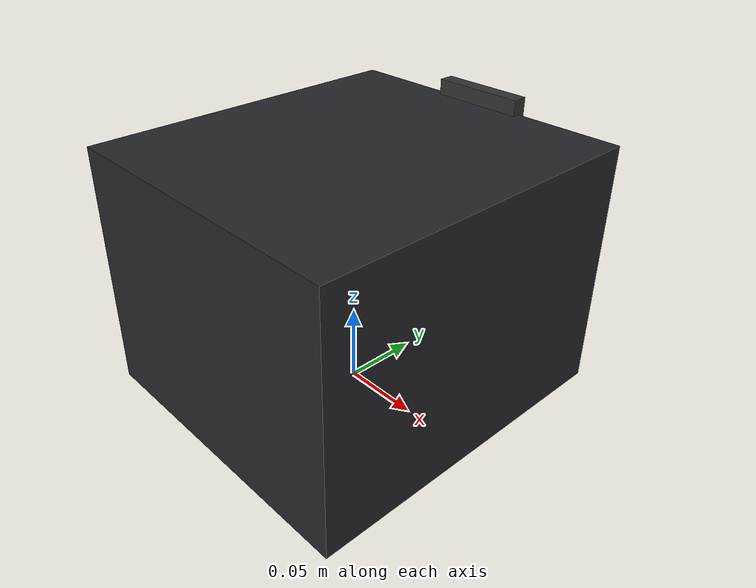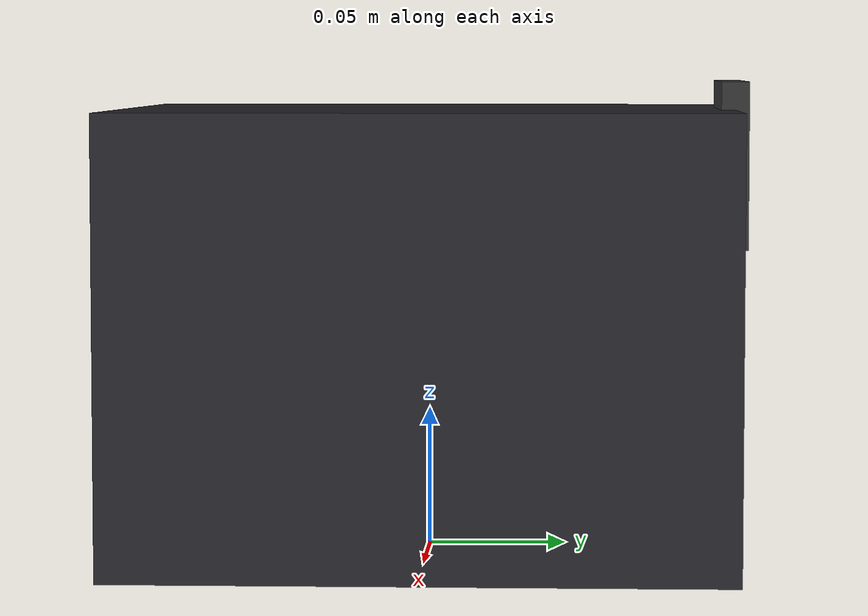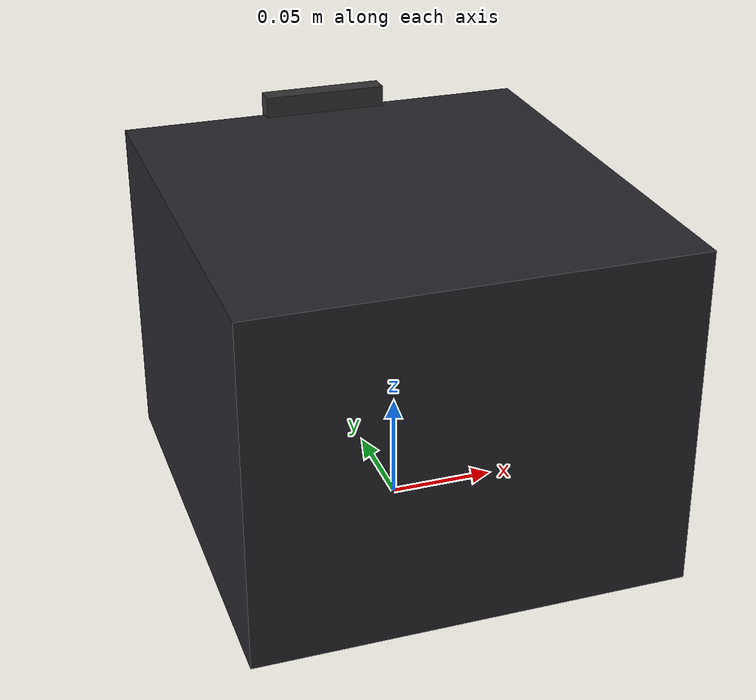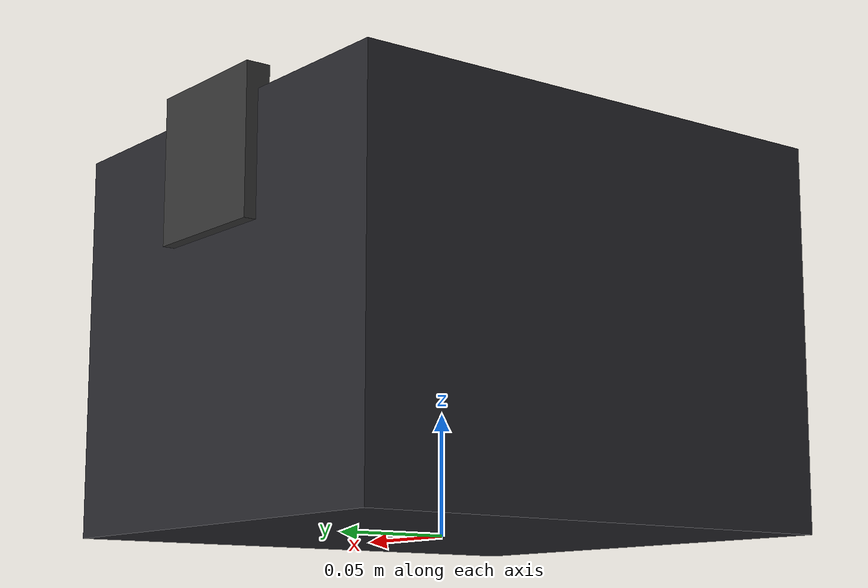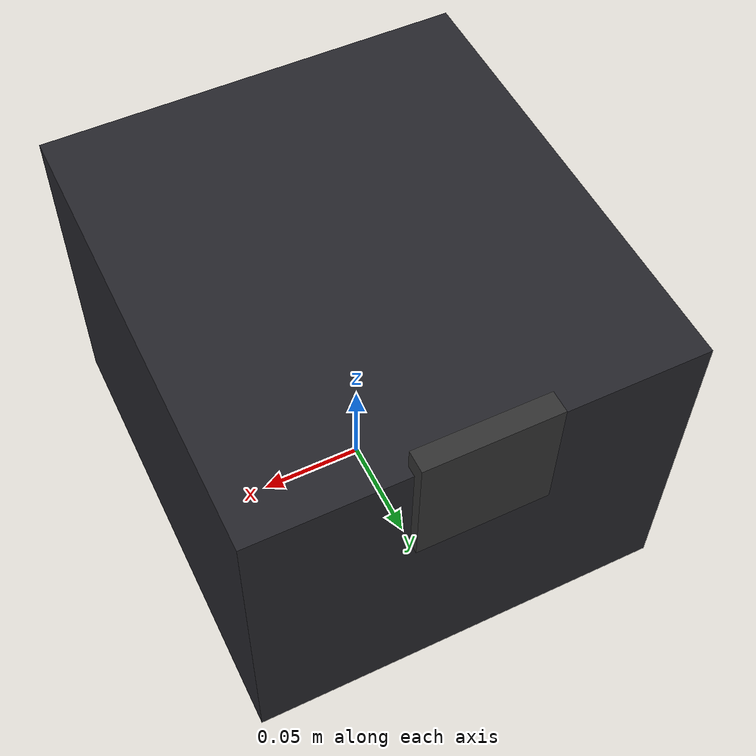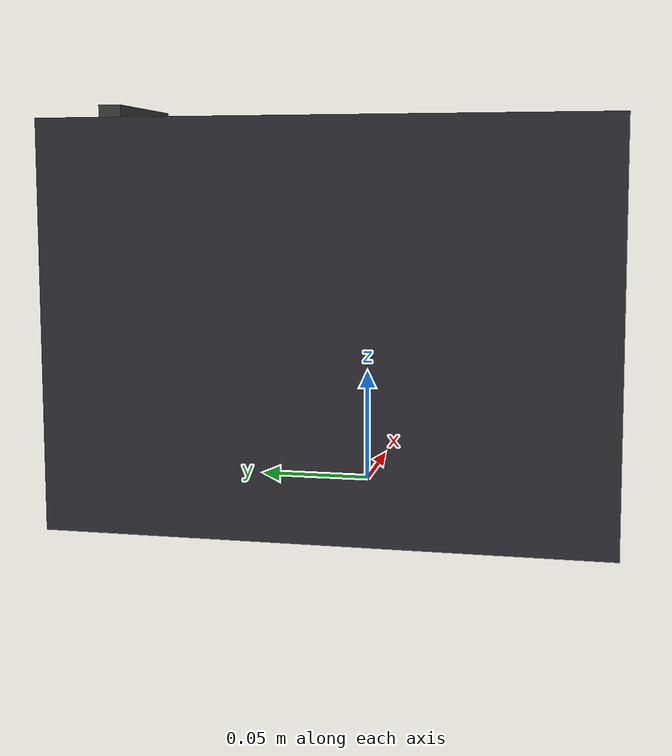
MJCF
<?xml version="1.0" encoding="utf-8"?>
<mujoco model="spectrofluorometer">
  <compiler angle="radian" autolimits="true"/>
  <default>
    <default class="body"><geom contype="1" conaffinity="1"/></default>
  </default>
  <worldbody>
    <body name="base">
      <geom type="box" size="0.1 0.11 0.08" pos="0 0 0.08" rgba="0.15 0.15 0.17 1" class="body"/>
      <geom type="box" size="0.03 0.0055000000000000005 0.02" pos="-0.05 -0.099 0.12" rgba="0.6 0.9 0.9 0.7" class="body"/>
      <body name="sample_lid" pos="0 0.11 0.14">
        <joint name="sample_lid_joint" type="hinge" axis="1 0 0" range="0 1.4" damping="0.2" frictionloss="0.3"/>
  <geom type="box" size="0.03 0.005 0.03" pos="0 0 0" rgba="0.2 0.2 0.2 1" class="body"/>
      </body>
    </body>
  </worldbody>
</mujoco>
